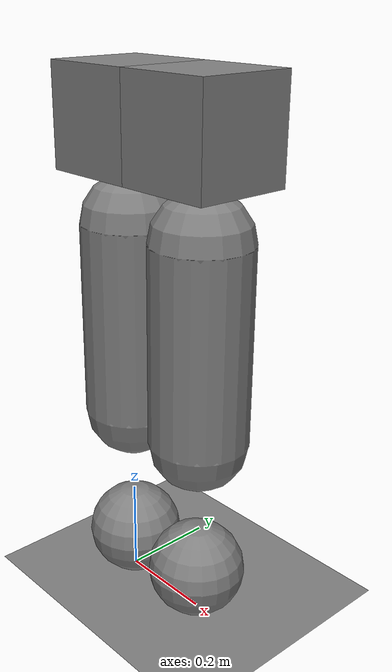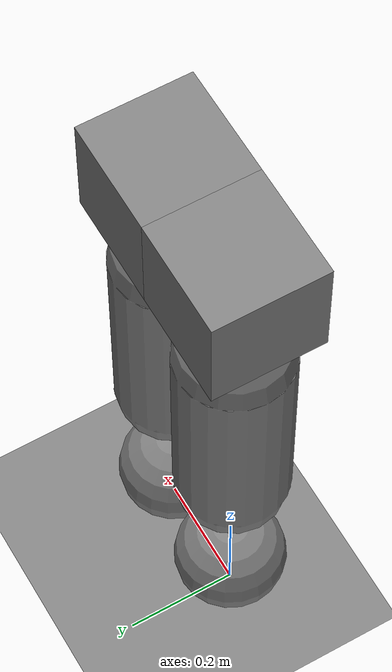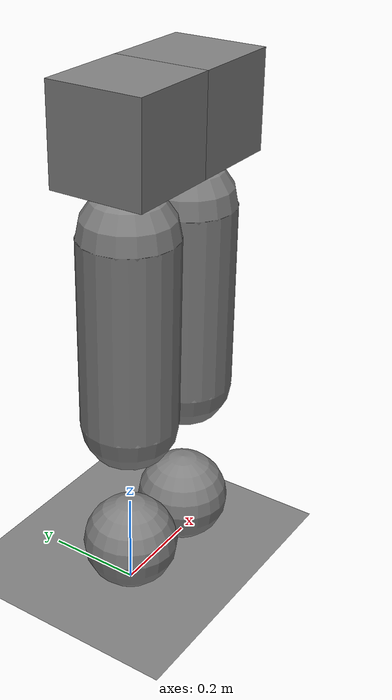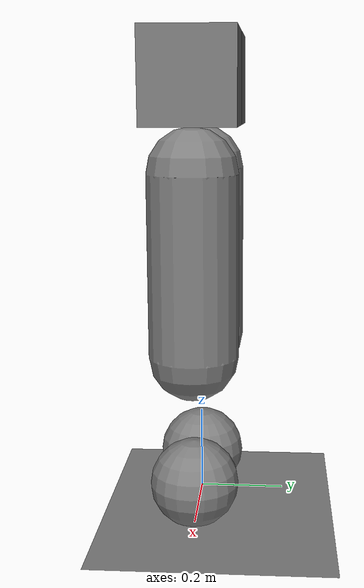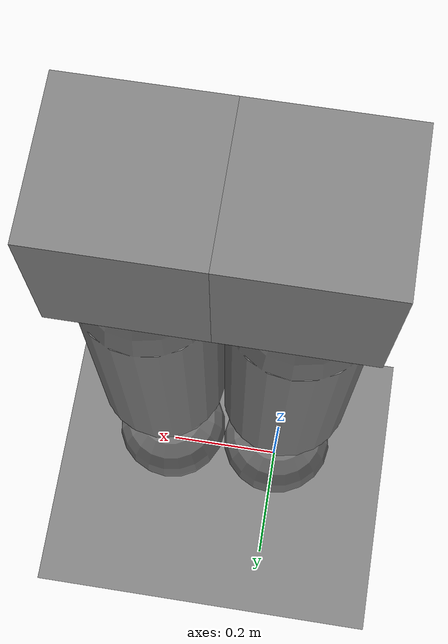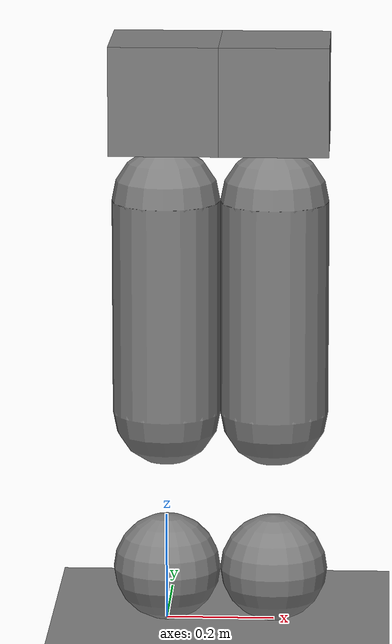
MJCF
<mujoco>
  <worldbody>
    <geom name="floor" size="10 10 .001" type="plane"/>
    <body pos="0 0 .1">
      <joint type="slide" axis="1 0 0"/>
      <joint type="slide" axis="0 0 1"/>
      <geom type="sphere" size=".1"/>
    </body>
    <body pos=".2 0 .1">
      <joint type="slide" axis="1 0 0"/>
      <joint type="slide" axis="0 0 1"/>
      <geom type="sphere" size=".1"/>
    </body>
    <body pos="0 0 .6">
      <joint type="slide" axis="1 0 0"/>
      <joint type="slide" axis="0 0 1"/>
      <geom type="capsule" size=".1 .2"/>
    </body>
    <body pos=".2 0 .6">
      <joint type="slide" axis="1 0 0"/>
      <joint type="slide" axis="0 0 1"/>
      <geom type="capsule" size=".1 .2"/>
    </body>
    <body pos="0 0 1">
      <joint type="slide" axis="1 0 0"/>
      <joint type="slide" axis="0 0 1"/>
      <geom type="box" size=".1 .1 .1"/>
    </body>
    <body pos=".2 0 1">
      <joint type="slide" axis="1 0 0"/>
      <joint type="slide" axis="0 0 1"/>
      <geom type="box" size=".1 .1 .1"/>
    </body>
  </worldbody>
  <keyframe>
    <key qpos="  0 -.1
               -.2 -.1
                 0 -.6
               -.2 -.6
                 0  -1
               -.2  -1"/>
  </keyframe>
</mujoco>
